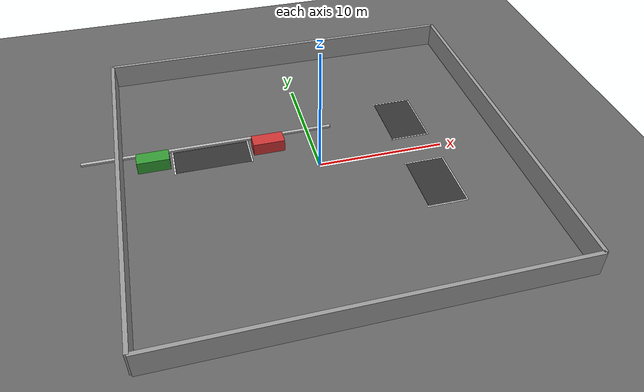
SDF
<?xml version="1.0" ?>
<sdf version="1.7">
  <world name="parking_lot">

    <!-- Physics -->
    <physics type="ode">
      <real_time_update_rate>1000.0</real_time_update_rate>
      <max_step_size>0.001</max_step_size>
      <real_time_factor>1</real_time_factor>
      <ode>
        <solver>
          <type>quick</type>
          <iters>100</iters>
          <sor>1.3</sor>
        </solver>
        <constraints>
          <cfm>0.0</cfm>
          <erp>0.2</erp>
          <contact_max_correcting_vel>100.0</contact_max_correcting_vel>
          <contact_surface_layer>0.001</contact_surface_layer>
        </constraints>
      </ode>
    </physics>

    <!-- Ignition Plugins -->
    <plugin
      filename="libignition-gazebo-physics-system.so"
      name="ignition::gazebo::systems::Physics">
    </plugin>
    <plugin
      filename="libignition-gazebo-user-commands-system.so"
      name="ignition::gazebo::systems::UserCommands">
    </plugin>
    <plugin
      filename="libignition-gazebo-scene-broadcaster-system.so"
      name="ignition::gazebo::systems::SceneBroadcaster">
    </plugin>
    <plugin
      filename="libignition-gazebo-sensors-system.so"
      name="ignition::gazebo::systems::Sensors">
      <render_engine>ogre2</render_engine>
    </plugin>

    <!-- Scene -->
    <scene>
      <ambient>0.4 0.4 0.4 1</ambient>
      <background>0.7 0.85 1.0 1</background>
      <shadows>true</shadows>
    </scene>

    <!-- Light source -->
    <light type="directional" name="sun">
      <cast_shadows>true</cast_shadows>
      <pose>0 0 10 0 0 0</pose>
      <diffuse>0.8 0.8 0.8 1</diffuse>
      <specular>0.2 0.2 0.2 1</specular>
      <attenuation>
        <range>1000</range>
        <constant>0.9</constant>
        <linear>0.01</linear>
        <quadratic>0.001</quadratic>
      </attenuation>
      <direction>-0.5 0.1 -0.9</direction>
    </light>

    <!-- Ground Plane with Parking Lot Texture -->
    <model name="ground_plane">
      <static>true</static>
      <link name="link">
        <collision name="collision">
          <geometry>
            <plane>
              <normal>0 0 1</normal>
              <size>100 100</size>
            </plane>
          </geometry>
          <surface>
            <friction>
              <ode>
                <mu>100</mu>
                <mu2>50</mu2>
              </ode>
            </friction>
          </surface>
        </collision>
        <visual name="visual">
          <geometry>
            <plane>
              <normal>0 0 1</normal>
              <size>100 100</size>
            </plane>
          </geometry>
          <material>
            <ambient>0.3 0.3 0.3 1</ambient>
            <diffuse>0.4 0.4 0.4 1</diffuse>
          </material>
        </visual>
      </link>
    </model>

    <!-- Parking Spot 1 - Perpendicular -->
    <model name="parking_spot_1">
      <static>true</static>
      <pose>8 4 0.001 0 0 0</pose>
      <link name="link">
        <visual name="visual">
          <geometry>
            <plane>
              <normal>0 0 1</normal>
              <size>3 5</size>
            </plane>
          </geometry>
          <material>
            <ambient>0.1 0.1 0.1 1</ambient>
            <diffuse>0.2 0.2 0.2 1</diffuse>
          </material>
        </visual>
      </link>
    </model>

    <!-- Parking Lines for Spot 1 -->
    <model name="parking_lines_1_left">
      <static>true</static>
      <pose>8 6.45 0.002 0 0 0</pose>
      <link name="link">
        <visual name="visual">
          <geometry>
            <box>
              <size>3.2 0.1 0.005</size>
            </box>
          </geometry>
          <material>
            <ambient>1 1 1 1</ambient>
            <diffuse>1 1 1 1</diffuse>
          </material>
        </visual>
      </link>
    </model>

    <model name="parking_lines_1_right">
      <static>true</static>
      <pose>8 1.55 0.002 0 0 0</pose>
      <link name="link">
        <visual name="visual">
          <geometry>
            <box>
              <size>3.2 0.1 0.005</size>
            </box>
          </geometry>
          <material>
            <ambient>1 1 1 1</ambient>
            <diffuse>1 1 1 1</diffuse>
          </material>
        </visual>
      </link>
    </model>

    <model name="parking_lines_1_back">
      <static>true</static>
      <pose>9.55 4 0.002 0 0 0</pose>
      <link name="link">
        <visual name="visual">
          <geometry>
            <box>
              <size>0.1 5 0.005</size>
            </box>
          </geometry>
          <material>
            <ambient>1 1 1 1</ambient>
            <diffuse>1 1 1 1</diffuse>
          </material>
        </visual>
      </link>
    </model>

    <!-- Parking Spot 2 - Perpendicular -->
    <model name="parking_spot_2">
      <static>true</static>
      <pose>8 -4 0.001 0 0 0</pose>
      <link name="link">
        <visual name="visual">
          <geometry>
            <plane>
              <normal>0 0 1</normal>
              <size>3 5</size>
            </plane>
          </geometry>
          <material>
            <ambient>0.1 0.1 0.1 1</ambient>
            <diffuse>0.2 0.2 0.2 1</diffuse>
          </material>
        </visual>
      </link>
    </model>

    <!-- Parking Lines for Spot 2 -->
    <model name="parking_lines_2_left">
      <static>true</static>
      <pose>8 -1.55 0.002 0 0 0</pose>
      <link name="link">
        <visual name="visual">
          <geometry>
            <box>
              <size>3.2 0.1 0.005</size>
            </box>
          </geometry>
          <material>
            <ambient>1 1 1 1</ambient>
            <diffuse>1 1 1 1</diffuse>
          </material>
        </visual>
      </link>
    </model>

    <model name="parking_lines_2_right">
      <static>true</static>
      <pose>8 -6.45 0.002 0 0 0</pose>
      <link name="link">
        <visual name="visual">
          <geometry>
            <box>
              <size>3.2 0.1 0.005</size>
            </box>
          </geometry>
          <material>
            <ambient>1 1 1 1</ambient>
            <diffuse>1 1 1 1</diffuse>
          </material>
        </visual>
      </link>
    </model>

    <model name="parking_lines_2_back">
      <static>true</static>
      <pose>9.55 -4 0.002 0 0 0</pose>
      <link name="link">
        <visual name="visual">
          <geometry>
            <box>
              <size>0.1 5 0.005</size>
            </box>
          </geometry>
          <material>
            <ambient>1 1 1 1</ambient>
            <diffuse>1 1 1 1</diffuse>
          </material>
        </visual>
      </link>
    </model>

    <!-- Parallel Parking Spot -->
    <model name="parallel_spot">
      <static>true</static>
      <pose>-8 3 0.001 0 0 0</pose>
      <link name="link">
        <visual name="visual">
          <geometry>
            <plane>
              <normal>0 0 1</normal>
              <size>6 2.5</size>
            </plane>
          </geometry>
          <material>
            <ambient>0.1 0.1 0.1 1</ambient>
            <diffuse>0.2 0.2 0.2 1</diffuse>
          </material>
        </visual>
      </link>
    </model>

    <!-- Parallel Parking Lines -->
    <model name="parallel_line_front">
      <static>true</static>
      <pose>-5 3 0.002 0 0 1.5708</pose>
      <link name="link">
        <visual name="visual">
          <geometry>
            <box>
              <size>2.7 0.1 0.005</size>
            </box>
          </geometry>
          <material>
            <ambient>1 1 1 1</ambient>
            <diffuse>1 1 1 1</diffuse>
          </material>
        </visual>
      </link>
    </model>

    <model name="parallel_line_back">
      <static>true</static>
      <pose>-11 3 0.002 0 0 1.5708</pose>
      <link name="link">
        <visual name="visual">
          <geometry>
            <box>
              <size>2.7 0.1 0.005</size>
            </box>
          </geometry>
          <material>
            <ambient>1 1 1 1</ambient>
            <diffuse>1 1 1 1</diffuse>
          </material>
        </visual>
      </link>
    </model>

    <!-- Curb for parallel parking -->
    <model name="curb">
      <static>true</static>
      <pose>-8 4.5 0.075 0 0 0</pose>
      <link name="link">
        <collision name="collision">
          <geometry>
            <box>
              <size>20 0.3 0.15</size>
            </box>
          </geometry>
        </collision>
        <visual name="visual">
          <geometry>
            <box>
              <size>20 0.3 0.15</size>
            </box>
          </geometry>
          <material>
            <ambient>0.6 0.6 0.6 1</ambient>
            <diffuse>0.7 0.7 0.7 1</diffuse>
          </material>
        </visual>
      </link>
    </model>

    <!-- Obstacle cars for parallel parking -->
    <model name="parked_car_front">
      <static>true</static>
      <pose>-3.5 3 0.5 0 0 0</pose>
      <link name="link">
        <collision name="collision">
          <geometry>
            <box>
              <size>2.5 1.2 1.0</size>
            </box>
          </geometry>
        </collision>
        <visual name="visual">
          <geometry>
            <box>
              <size>2.5 1.2 1.0</size>
            </box>
          </geometry>
          <material>
            <ambient>0.6 0.1 0.1 1</ambient>
            <diffuse>0.8 0.2 0.2 1</diffuse>
          </material>
        </visual>
      </link>
    </model>

    <model name="parked_car_back">
      <static>true</static>
      <pose>-12.5 3 0.5 0 0 0</pose>
      <link name="link">
        <collision name="collision">
          <geometry>
            <box>
              <size>2.5 1.2 1.0</size>
            </box>
          </geometry>
        </collision>
        <visual name="visual">
          <geometry>
            <box>
              <size>2.5 1.2 1.0</size>
            </box>
          </geometry>
          <material>
            <ambient>0.1 0.4 0.1 1</ambient>
            <diffuse>0.2 0.6 0.2 1</diffuse>
          </material>
        </visual>
      </link>
    </model>

    <!-- Wall boundaries -->
    <model name="wall_north">
      <static>true</static>
      <pose>0 15 1 0 0 0</pose>
      <link name="link">
        <collision name="collision">
          <geometry>
            <box>
              <size>30 0.3 2</size>
            </box>
          </geometry>
        </collision>
        <visual name="visual">
          <geometry>
            <box>
              <size>30 0.3 2</size>
            </box>
          </geometry>
          <material>
            <ambient>0.5 0.5 0.5 1</ambient>
            <diffuse>0.6 0.6 0.6 1</diffuse>
          </material>
        </visual>
      </link>
    </model>

    <model name="wall_south">
      <static>true</static>
      <pose>0 -15 1 0 0 0</pose>
      <link name="link">
        <collision name="collision">
          <geometry>
            <box>
              <size>30 0.3 2</size>
            </box>
          </geometry>
        </collision>
        <visual name="visual">
          <geometry>
            <box>
              <size>30 0.3 2</size>
            </box>
          </geometry>
          <material>
            <ambient>0.5 0.5 0.5 1</ambient>
            <diffuse>0.6 0.6 0.6 1</diffuse>
          </material>
        </visual>
      </link>
    </model>

    <model name="wall_east">
      <static>true</static>
      <pose>15 0 1 0 0 0</pose>
      <link name="link">
        <collision name="collision">
          <geometry>
            <box>
              <size>0.3 30 2</size>
            </box>
          </geometry>
        </collision>
        <visual name="visual">
          <geometry>
            <box>
              <size>0.3 30 2</size>
            </box>
          </geometry>
          <material>
            <ambient>0.5 0.5 0.5 1</ambient>
            <diffuse>0.6 0.6 0.6 1</diffuse>
          </material>
        </visual>
      </link>
    </model>

    <model name="wall_west">
      <static>true</static>
      <pose>-15 0 1 0 0 0</pose>
      <link name="link">
        <collision name="collision">
          <geometry>
            <box>
              <size>0.3 30 2</size>
            </box>
          </geometry>
        </collision>
        <visual name="visual">
          <geometry>
            <box>
              <size>0.3 30 2</size>
            </box>
          </geometry>
          <material>
            <ambient>0.5 0.5 0.5 1</ambient>
            <diffuse>0.6 0.6 0.6 1</diffuse>
          </material>
        </visual>
      </link>
    </model>

  </world>
</sdf>
